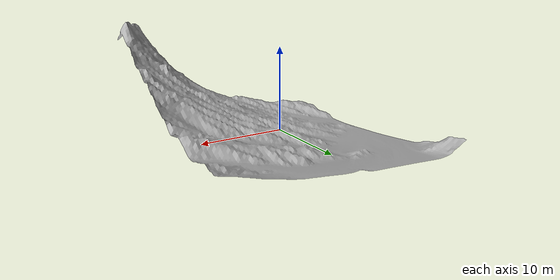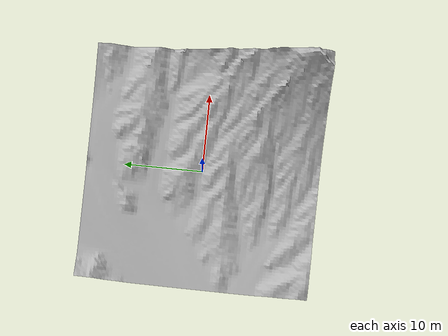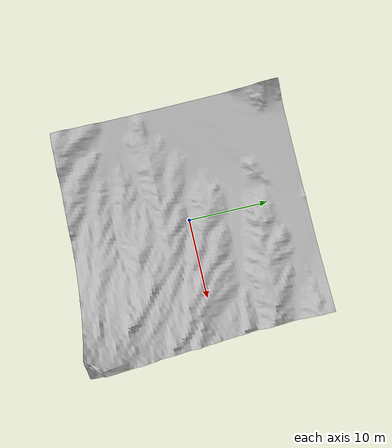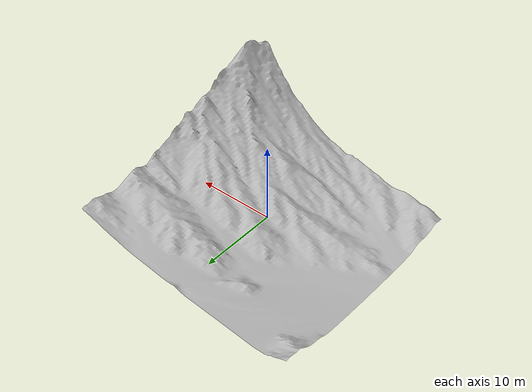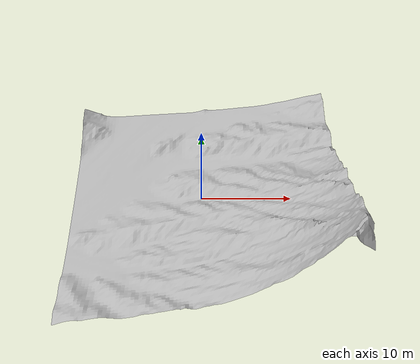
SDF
<?xml version="1.0" ?>
<sdf version="1.7">
  <world name="default">

    <!-- Cámara inicial de la GUI (enmarca el área de trabajo del robot en el origen) -->
    <gui fullscreen="0">
      <camera name="user_camera">
        <pose>3.0 -3.0 1.8 0 0.32 2.3562</pose>
        <view_controller>orbit</view_controller>
        <projection_type>perspective</projection_type>
      </camera>
    </gui>

    <!-- Gravedad marciana -->
    <gravity>0 0 -3.71</gravity>

    <!-- ================= FÍSICA (ODE) ================= -->
    <physics type="ode">
      <max_step_size>0.004</max_step_size>
      <real_time_update_rate>250</real_time_update_rate>
      <real_time_factor>1</real_time_factor>
      <ode>
        <solver>
          <type>quick</type>
          <iters>100</iters>
          <sor>1.3</sor>
        </solver>
        <constraints>
          <cfm>0.0</cfm>
          <erp>0.2</erp>
          <contact_max_correcting_vel>100</contact_max_correcting_vel>
          <contact_surface_layer>0.001</contact_surface_layer>
        </constraints>
      </ode>
    </physics>

    <!-- ================= ESCENA (cielo marciano) ================= -->
    <scene>
      <ambient>0.5 0.5 0.5 1</ambient>
      <background>0.82 0.56 0.42 1</background>  <!-- tono polvoriento anaranjado -->
      <shadows>0</shadows>
      <grid>0</grid>
    </scene>

    <!-- Luz direccional cálida tipo sol marciano (sin proyectar sombras) -->
    <light name="sun" type="directional">
      <cast_shadows>0</cast_shadows>
      <pose>0 0 50 0 0 0</pose>
      <diffuse>0.9 0.85 0.8 1</diffuse>
      <specular>0.15 0.15 0.15 1</specular>
      <direction>-0.5 0.3 -0.8</direction>
    </light>

    <!-- ================= TERRENO MARCIANO (Space ROS martian_surface) ================= -->
    <!-- Parche de ~30 x 30 m (recortado a +-15 m), centrado en el origen; el suelo
         en el origen está a z≈0, de modo que el brazo PAROL6 (generado en 0,0,0)
         queda sobre la superficie. -->
    <model name="martian_surface">
      <static>1</static>
      <pose>0 0 0 0 0 0</pose>
      <link name="terrain">
        <!-- Visual: malla recortada texturizada (~12k tri) -->
        <visual name="visual">
          <geometry>
            <mesh><uri>martian_surface.obj</uri></mesh>
          </geometry>
        </visual>
        <collision name="collision">
          <geometry>
            <mesh><uri>martian_surface_collision.obj</uri></mesh>
          </geometry>
          <max_contacts>10</max_contacts>
          <surface>
            <friction><ode><mu>0.9</mu><mu2>0.9</mu2></ode></friction>
            <contact><ode><kp>1e6</kp><kd>1e2</kd></ode></contact>
          </surface>
        </collision>
      </link>
    </model>

    <!-- Plugin de estado de Gazebo-ROS: expone /get_entity_state y /set_entity_state
         (igual que en worlds/mars y worlds/mars_optimized). -->
    <plugin name="gazebo_ros_state" filename="libgazebo_ros_state.so">
      <ros><namespace>/</namespace></ros>
      <update_rate>10</update_rate>
    </plugin>

  </world>
</sdf>
